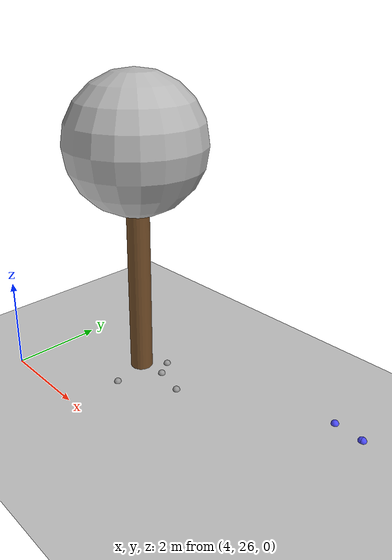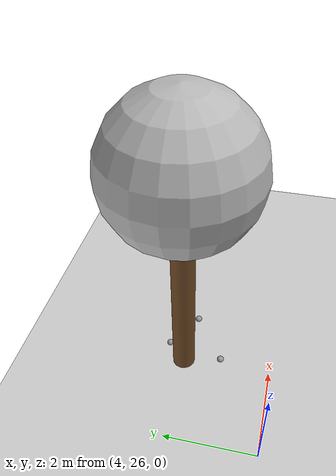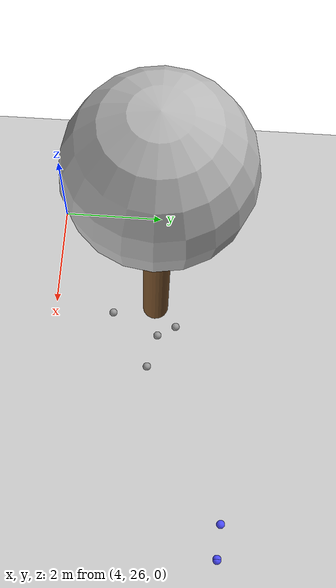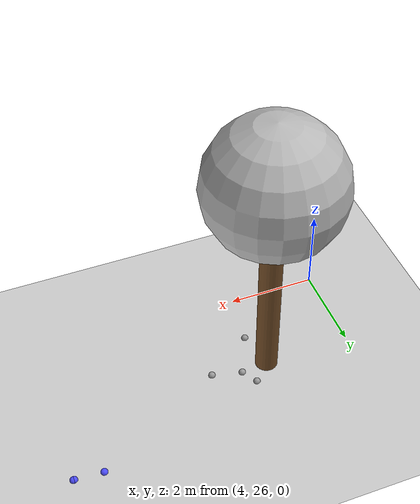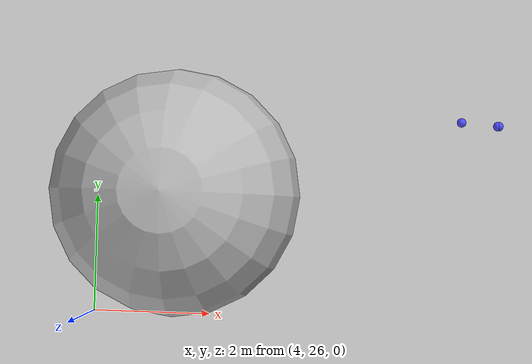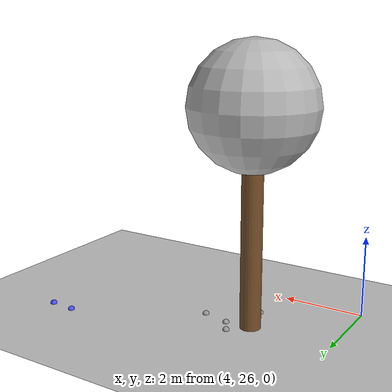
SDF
<sdf version="1.7">
 <world name="default">
  <model name="ground_plane">
   <static>1</static>
   <link name="link">
    <collision name="collision">
     <geometry><plane><normal>0 0 1</normal><size>100 100</size></plane></geometry>
     <surface>
      <contact><collide_bitmask>65535</collide_bitmask></contact>
      <friction><ode><mu>100</mu><mu2>50</mu2></ode></friction>
     </surface>
    </collision>
    <visual name="visual">
     <cast_shadows>0</cast_shadows>
     <geometry><plane><normal>0 0 1</normal><size>100 100</size></plane></geometry>
     <material>
      <script><uri>file://media/materials/scripts/gazebo.material</uri><name>Gazebo/Grey</name></script>
     </material>
    </visual>
   </link>
  </model>
  <model name="tree_simple_32">
   <static>1</static>
   <link name="link">
    <pose>0 0 0.1 0 -0 0</pose>
    <inertial>
     <mass>666</mass>
     <inertia>
      <ixx>0.0861167</ixx>
      <ixy>0</ixy>
      <ixz>0</ixz>
      <iyy>0.0861167</iyy>
      <iyz>0</iyz>
      <izz>0.0861167</izz>
     </inertia>
    </inertial>
    <collision name="collision_trunk">
     <pose>0 0 2 0 -0 0</pose>
     <geometry><cylinder><radius>0.25</radius><length>4</length></cylinder></geometry>
     <surface>
      <contact>
       <poissons_ratio>0.347</poissons_ratio>
       <elastic_modulus>8.8e+09</elastic_modulus>
       <ode><kp>100000</kp><kd>100</kd><max_vel>100</max_vel><min_depth>0.001</min_depth></ode>
      </contact>
      <friction>
       <torsional>
        <coefficient>1</coefficient>
        <use_patch_radius>0</use_patch_radius>
        <surface_radius>0.01</surface_radius>
       </torsional>
      </friction>
     </surface>
    </collision>
    <collision name="collision_treetop">
     <pose>0 0 5.2 0 -0 0</pose>
     <geometry><sphere><radius>1.5</radius></sphere></geometry>
     <surface>
      <contact>
       <poissons_ratio>0.347</poissons_ratio>
       <elastic_modulus>8.8e+09</elastic_modulus>
       <ode><kp>100000</kp><kd>100</kd><max_vel>100</max_vel><min_depth>0.001</min_depth></ode>
      </contact>
      <friction>
       <torsional>
        <coefficient>1</coefficient>
        <use_patch_radius>0</use_patch_radius>
        <surface_radius>0.01</surface_radius>
       </torsional>
      </friction>
     </surface>
    </collision>
    <visual name="trunk">
     <pose>0 0 2 0 -0 0</pose>
     <geometry><cylinder><radius>0.25</radius><length>4</length></cylinder></geometry>
     <material>
      <script>
       <uri>model://tree_simple/scripts</uri>
       <uri>model://tree_simple/materials/textures</uri>
       <name>TreeSimple/Trunk</name>
      </script>
     </material>
    </visual>
    <visual name="treetop">
     <pose>0 0 5.2 0 -0 0</pose>
     <geometry><sphere><radius>1.5</radius></sphere></geometry>
     <material>
      <script>
       <uri>model://tree_simple/scripts</uri>
       <uri>model://tree_simple/materials/textures</uri>
       <name>TreeSimple/Treetop</name>
      </script>
     </material>
    </visual>
   </link>
   <pose>6 28 -0.1 0 -0 0</pose>
  </model>
  <model name="seed_blue_57">
   <link name="link">
    <inertial>
     <mass>1</mass>
     <inertia><ixx>0.1</ixx><ixy>0</ixy><ixz>0</ixz><iyy>0.1</iyy><iyz>0</iyz><izz>0.1</izz></inertia>
    </inertial>
    <visual name="visual">
     <geometry><sphere><radius>0.08</radius></sphere></geometry>
     <material>
      <script><name>Gazebo/Grey</name><uri>file://media/materials/scripts/gazebo.material</uri></script>
      <shader type="pixel"><normal_map>__default__</normal_map></shader>
      <ambient>0.3 0.3 1 1</ambient>
      <diffuse>0.7 0.7 0.7 1</diffuse>
      <specular>0.01 0.01 0.01 1</specular>
      <emissive>0 0 0 1</emissive>
     </material>
    </visual>
    <collision name="collision">
     <geometry><sphere><radius>0.0005</radius></sphere></geometry>
     <surface>
      <friction>
       <ode><mu>1</mu><mu2>1</mu2><fdir1>0 0 0</fdir1><slip1>0</slip1><slip2>0</slip2></ode>
       <torsional>
        <coefficient>1</coefficient>
        <patch_radius>0</patch_radius>
        <surface_radius>0</surface_radius>
        <use_patch_radius>1</use_patch_radius>
        <ode><slip>0</slip></ode>
       </torsional>
      </friction>
      <bounce><restitution_coefficient>0</restitution_coefficient><threshold>1e+06</threshold></bounce>
      <contact>
       <collide_without_contact>0</collide_without_contact>
       <collide_without_contact_bitmask>1</collide_without_contact_bitmask>
       <collide_bitmask>1</collide_bitmask>
       <ode>
        <soft_cfm>0</soft_cfm>
        <soft_erp>0.2</soft_erp>
        <kp>1e+13</kp>
        <kd>1</kd>
        <max_vel>0.01</max_vel>
        <min_depth>0</min_depth>
       </ode>
       <bullet>
        <split_impulse>1</split_impulse>
        <split_impulse_penetration_threshold>-0.01</split_impulse_penetration_threshold>
        <soft_cfm>0</soft_cfm>
        <soft_erp>0.2</soft_erp>
        <kp>1e+13</kp>
        <kd>1</kd>
       </bullet>
      </contact>
     </surface>
    </collision>
   </link>
   <static>0</static>
   <pose>10.9098 29.4308 0.0005 0 -0 0</pose>
  </model>
  <model name="seed_blue_61">
   <link name="link">
    <inertial>
     <mass>1</mass>
     <inertia><ixx>0.1</ixx><ixy>0</ixy><ixz>0</ixz><iyy>0.1</iyy><iyz>0</iyz><izz>0.1</izz></inertia>
    </inertial>
    <visual name="visual">
     <geometry><sphere><radius>0.08</radius></sphere></geometry>
     <material>
      <script><name>Gazebo/Grey</name><uri>file://media/materials/scripts/gazebo.material</uri></script>
      <shader type="pixel"><normal_map>__default__</normal_map></shader>
      <ambient>0.3 0.3 1 1</ambient>
      <diffuse>0.7 0.7 0.7 1</diffuse>
      <specular>0.01 0.01 0.01 1</specular>
      <emissive>0 0 0 1</emissive>
     </material>
    </visual>
    <collision name="collision">
     <geometry><sphere><radius>0.0005</radius></sphere></geometry>
     <surface>
      <friction>
       <ode><mu>1</mu><mu2>1</mu2><fdir1>0 0 0</fdir1><slip1>0</slip1><slip2>0</slip2></ode>
       <torsional>
        <coefficient>1</coefficient>
        <patch_radius>0</patch_radius>
        <surface_radius>0</surface_radius>
        <use_patch_radius>1</use_patch_radius>
        <ode><slip>0</slip></ode>
       </torsional>
      </friction>
      <bounce><restitution_coefficient>0</restitution_coefficient><threshold>1e+06</threshold></bounce>
      <contact>
       <collide_without_contact>0</collide_without_contact>
       <collide_without_contact_bitmask>1</collide_without_contact_bitmask>
       <collide_bitmask>1</collide_bitmask>
       <ode>
        <soft_cfm>0</soft_cfm>
        <soft_erp>0.2</soft_erp>
        <kp>1e+13</kp>
        <kd>1</kd>
        <max_vel>0.01</max_vel>
        <min_depth>0</min_depth>
       </ode>
       <bullet>
        <split_impulse>1</split_impulse>
        <split_impulse_penetration_threshold>-0.01</split_impulse_penetration_threshold>
        <soft_cfm>0</soft_cfm>
        <soft_erp>0.2</soft_erp>
        <kp>1e+13</kp>
        <kd>1</kd>
       </bullet>
      </contact>
     </surface>
    </collision>
   </link>
   <static>0</static>
   <pose>10.894 29.4303 0.0005 0 -0 0</pose>
  </model>
  <model name="seed_blue_62">
   <link name="link">
    <inertial>
     <mass>1</mass>
     <inertia><ixx>0.1</ixx><ixy>0</ixy><ixz>0</ixz><iyy>0.1</iyy><iyz>0</iyz><izz>0.1</izz></inertia>
    </inertial>
    <visual name="visual">
     <geometry><sphere><radius>0.08</radius></sphere></geometry>
     <material>
      <script><name>Gazebo/Grey</name><uri>file://media/materials/scripts/gazebo.material</uri></script>
      <shader type="pixel"><normal_map>__default__</normal_map></shader>
      <ambient>0.3 0.3 1 1</ambient>
      <diffuse>0.7 0.7 0.7 1</diffuse>
      <specular>0.01 0.01 0.01 1</specular>
      <emissive>0 0 0 1</emissive>
     </material>
    </visual>
    <collision name="collision">
     <geometry><sphere><radius>0.0005</radius></sphere></geometry>
     <surface>
      <friction>
       <ode><mu>1</mu><mu2>1</mu2><fdir1>0 0 0</fdir1><slip1>0</slip1><slip2>0</slip2></ode>
       <torsional>
        <coefficient>1</coefficient>
        <patch_radius>0</patch_radius>
        <surface_radius>0</surface_radius>
        <use_patch_radius>1</use_patch_radius>
        <ode><slip>0</slip></ode>
       </torsional>
      </friction>
      <bounce><restitution_coefficient>0</restitution_coefficient><threshold>1e+06</threshold></bounce>
      <contact>
       <collide_without_contact>0</collide_without_contact>
       <collide_without_contact_bitmask>1</collide_without_contact_bitmask>
       <collide_bitmask>1</collide_bitmask>
       <ode>
        <soft_cfm>0</soft_cfm>
        <soft_erp>0.2</soft_erp>
        <kp>1e+13</kp>
        <kd>1</kd>
        <max_vel>0.01</max_vel>
        <min_depth>0</min_depth>
       </ode>
       <bullet>
        <split_impulse>1</split_impulse>
        <split_impulse_penetration_threshold>-0.01</split_impulse_penetration_threshold>
        <soft_cfm>0</soft_cfm>
        <soft_erp>0.2</soft_erp>
        <kp>1e+13</kp>
        <kd>1</kd>
       </bullet>
      </contact>
     </surface>
    </collision>
   </link>
   <static>0</static>
   <pose>10.262 29.4735 0.0005 0 -0 0</pose>
  </model>
  <model name="seed_black_18">
   <link name="link">
    <inertial>
     <mass>1</mass>
     <inertia><ixx>0.1</ixx><ixy>0</ixy><ixz>0</ixz><iyy>0.1</iyy><iyz>0</iyz><izz>0.1</izz></inertia>
    </inertial>
    <visual name="visual">
     <geometry><sphere><radius>0.08</radius></sphere></geometry>
     <material>
      <script><name>Gazebo/Grey</name><uri>file://media/materials/scripts/gazebo.material</uri></script>
      <shader type="pixel"><normal_map>__default__</normal_map></shader>
      <ambient>0 0 0 1</ambient>
      <diffuse>0.7 0.7 0.7 1</diffuse>
      <specular>0.01 0.01 0.01 1</specular>
      <emissive>0 0 0 1</emissive>
     </material>
    </visual>
    <collision name="collision">
     <geometry><sphere><radius>0.0005</radius></sphere></geometry>
     <surface>
      <friction>
       <ode><mu>1</mu><mu2>1</mu2><fdir1>0 0 0</fdir1><slip1>0</slip1><slip2>0</slip2></ode>
       <torsional>
        <coefficient>1</coefficient>
        <patch_radius>0</patch_radius>
        <surface_radius>0</surface_radius>
        <use_patch_radius>1</use_patch_radius>
        <ode><slip>0</slip></ode>
       </torsional>
      </friction>
      <bounce><restitution_coefficient>0</restitution_coefficient><threshold>1e+06</threshold></bounce>
      <contact>
       <collide_without_contact>0</collide_without_contact>
       <collide_without_contact_bitmask>1</collide_without_contact_bitmask>
       <collide_bitmask>1</collide_bitmask>
       <ode>
        <soft_cfm>0</soft_cfm>
        <soft_erp>0.2</soft_erp>
        <kp>1e+13</kp>
        <kd>1</kd>
        <max_vel>0.01</max_vel>
        <min_depth>0</min_depth>
       </ode>
       <bullet>
        <split_impulse>1</split_impulse>
        <split_impulse_penetration_threshold>-0.01</split_impulse_penetration_threshold>
        <soft_cfm>0</soft_cfm>
        <soft_erp>0.2</soft_erp>
        <kp>1e+13</kp>
        <kd>1</kd>
       </bullet>
      </contact>
     </surface>
    </collision>
   </link>
   <static>0</static>
   <pose>6.17689 27.1589 0.0005 0 -0 0</pose>
  </model>
  <model name="seed_black_19">
   <link name="link">
    <inertial>
     <mass>1</mass>
     <inertia><ixx>0.1</ixx><ixy>0</ixy><ixz>0</ixz><iyy>0.1</iyy><iyz>0</iyz><izz>0.1</izz></inertia>
    </inertial>
    <visual name="visual">
     <geometry><sphere><radius>0.08</radius></sphere></geometry>
     <material>
      <script><name>Gazebo/Grey</name><uri>file://media/materials/scripts/gazebo.material</uri></script>
      <shader type="pixel"><normal_map>__default__</normal_map></shader>
      <ambient>0 0 0 1</ambient>
      <diffuse>0.7 0.7 0.7 1</diffuse>
      <specular>0.01 0.01 0.01 1</specular>
      <emissive>0 0 0 1</emissive>
     </material>
    </visual>
    <collision name="collision">
     <geometry><sphere><radius>0.0005</radius></sphere></geometry>
     <surface>
      <friction>
       <ode><mu>1</mu><mu2>1</mu2><fdir1>0 0 0</fdir1><slip1>0</slip1><slip2>0</slip2></ode>
       <torsional>
        <coefficient>1</coefficient>
        <patch_radius>0</patch_radius>
        <surface_radius>0</surface_radius>
        <use_patch_radius>1</use_patch_radius>
        <ode><slip>0</slip></ode>
       </torsional>
      </friction>
      <bounce><restitution_coefficient>0</restitution_coefficient><threshold>1e+06</threshold></bounce>
      <contact>
       <collide_without_contact>0</collide_without_contact>
       <collide_without_contact_bitmask>1</collide_without_contact_bitmask>
       <collide_bitmask>1</collide_bitmask>
       <ode>
        <soft_cfm>0</soft_cfm>
        <soft_erp>0.2</soft_erp>
        <kp>1e+13</kp>
        <kd>1</kd>
        <max_vel>0.01</max_vel>
        <min_depth>0</min_depth>
       </ode>
       <bullet>
        <split_impulse>1</split_impulse>
        <split_impulse_penetration_threshold>-0.01</split_impulse_penetration_threshold>
        <soft_cfm>0</soft_cfm>
        <soft_erp>0.2</soft_erp>
        <kp>1e+13</kp>
        <kd>1</kd>
       </bullet>
      </contact>
     </surface>
    </collision>
   </link>
   <static>0</static>
   <pose>6.40668 28.4282 0.0005 0 -0 0</pose>
  </model>
  <model name="seed_black_21">
   <link name="link">
    <inertial>
     <mass>1</mass>
     <inertia><ixx>0.1</ixx><ixy>0</ixy><ixz>0</ixz><iyy>0.1</iyy><iyz>0</iyz><izz>0.1</izz></inertia>
    </inertial>
    <visual name="visual">
     <geometry><sphere><radius>0.08</radius></sphere></geometry>
     <material>
      <script><name>Gazebo/Grey</name><uri>file://media/materials/scripts/gazebo.material</uri></script>
      <shader type="pixel"><normal_map>__default__</normal_map></shader>
      <ambient>0 0 0 1</ambient>
      <diffuse>0.7 0.7 0.7 1</diffuse>
      <specular>0.01 0.01 0.01 1</specular>
      <emissive>0 0 0 1</emissive>
     </material>
    </visual>
    <collision name="collision">
     <geometry><sphere><radius>0.0005</radius></sphere></geometry>
     <surface>
      <friction>
       <ode><mu>1</mu><mu2>1</mu2><fdir1>0 0 0</fdir1><slip1>0</slip1><slip2>0</slip2></ode>
       <torsional>
        <coefficient>1</coefficient>
        <patch_radius>0</patch_radius>
        <surface_radius>0</surface_radius>
        <use_patch_radius>1</use_patch_radius>
        <ode><slip>0</slip></ode>
       </torsional>
      </friction>
      <bounce><restitution_coefficient>0</restitution_coefficient><threshold>1e+06</threshold></bounce>
      <contact>
       <collide_without_contact>0</collide_without_contact>
       <collide_without_contact_bitmask>1</collide_without_contact_bitmask>
       <collide_bitmask>1</collide_bitmask>
       <ode>
        <soft_cfm>0</soft_cfm>
        <soft_erp>0.2</soft_erp>
        <kp>1e+13</kp>
        <kd>1</kd>
        <max_vel>0.01</max_vel>
        <min_depth>0</min_depth>
       </ode>
       <bullet>
        <split_impulse>1</split_impulse>
        <split_impulse_penetration_threshold>-0.01</split_impulse_penetration_threshold>
        <soft_cfm>0</soft_cfm>
        <soft_erp>0.2</soft_erp>
        <kp>1e+13</kp>
        <kd>1</kd>
       </bullet>
      </contact>
     </surface>
    </collision>
   </link>
   <static>0</static>
   <pose>7.28077 27.9095 0.0005 0 -0 0</pose>
  </model>
  <model name="seed_black_22">
   <link name="link">
    <inertial>
     <mass>1</mass>
     <inertia><ixx>0.1</ixx><ixy>0</ixy><ixz>0</ixz><iyy>0.1</iyy><iyz>0</iyz><izz>0.1</izz></inertia>
    </inertial>
    <visual name="visual">
     <geometry><sphere><radius>0.08</radius></sphere></geometry>
     <material>
      <script><name>Gazebo/Grey</name><uri>file://media/materials/scripts/gazebo.material</uri></script>
      <shader type="pixel"><normal_map>__default__</normal_map></shader>
      <ambient>0 0 0 1</ambient>
      <diffuse>0.7 0.7 0.7 1</diffuse>
      <specular>0.01 0.01 0.01 1</specular>
      <emissive>0 0 0 1</emissive>
     </material>
    </visual>
    <collision name="collision">
     <geometry><sphere><radius>0.0005</radius></sphere></geometry>
     <surface>
      <friction>
       <ode><mu>1</mu><mu2>1</mu2><fdir1>0 0 0</fdir1><slip1>0</slip1><slip2>0</slip2></ode>
       <torsional>
        <coefficient>1</coefficient>
        <patch_radius>0</patch_radius>
        <surface_radius>0</surface_radius>
        <use_patch_radius>1</use_patch_radius>
        <ode><slip>0</slip></ode>
       </torsional>
      </friction>
      <bounce><restitution_coefficient>0</restitution_coefficient><threshold>1e+06</threshold></bounce>
      <contact>
       <collide_without_contact>0</collide_without_contact>
       <collide_without_contact_bitmask>1</collide_without_contact_bitmask>
       <collide_bitmask>1</collide_bitmask>
       <ode>
        <soft_cfm>0</soft_cfm>
        <soft_erp>0.2</soft_erp>
        <kp>1e+13</kp>
        <kd>1</kd>
        <max_vel>0.01</max_vel>
        <min_depth>0</min_depth>
       </ode>
       <bullet>
        <split_impulse>1</split_impulse>
        <split_impulse_penetration_threshold>-0.01</split_impulse_penetration_threshold>
        <soft_cfm>0</soft_cfm>
        <soft_erp>0.2</soft_erp>
        <kp>1e+13</kp>
        <kd>1</kd>
       </bullet>
      </contact>
     </surface>
    </collision>
   </link>
   <static>0</static>
   <pose>6.61421 28.0764 0.0005 0 -0 0</pose>
  </model>
 </world>
</sdf>
